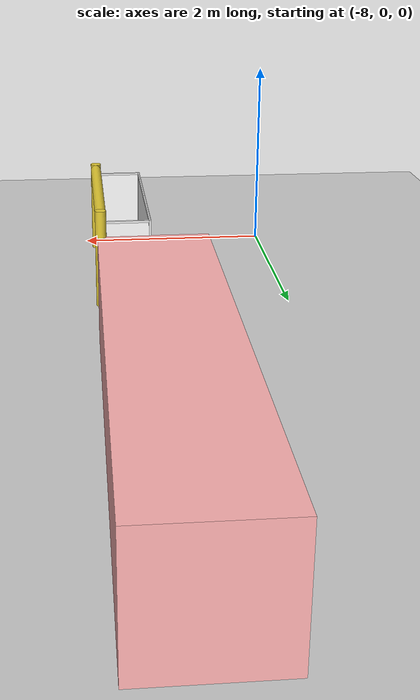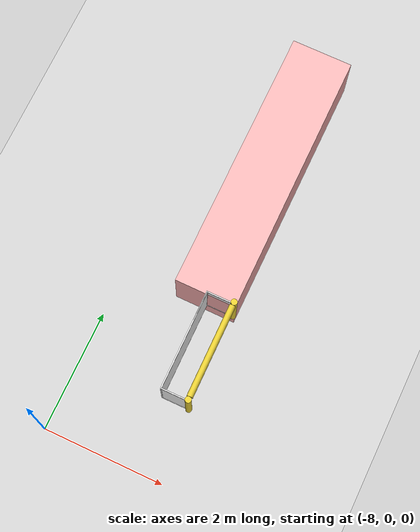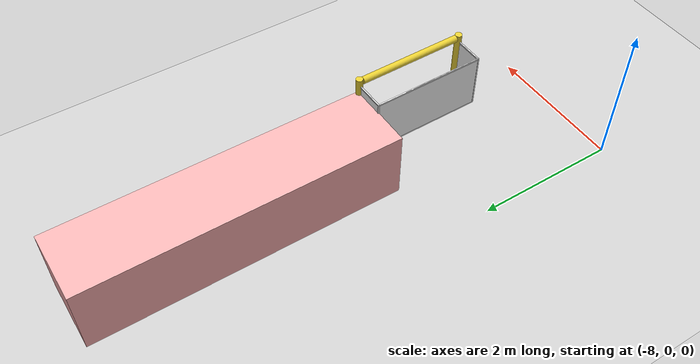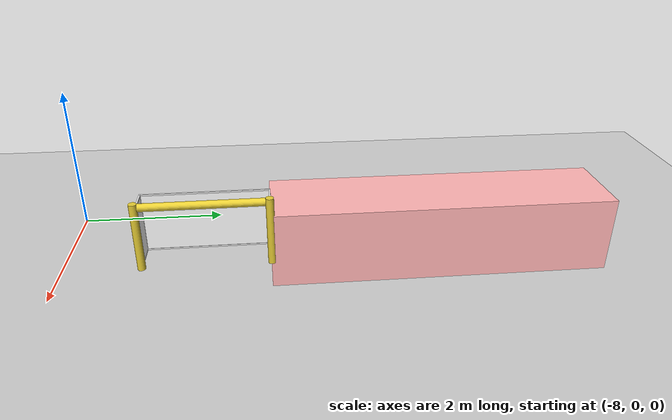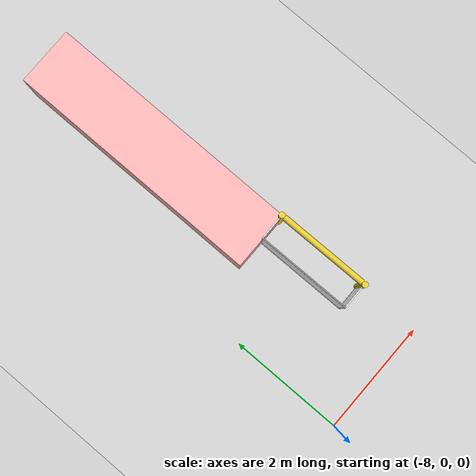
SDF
<sdf version="1.6">
 <world name="default">
  <model name="ground_plane">
   <static>1</static>
   <link name="link">
    <collision name="collision">
     <geometry><plane><normal>0 0 1</normal><size>100 100</size></plane></geometry>
     <surface><friction><ode><mu>100</mu><mu2>50</mu2></ode></friction></surface>
    </collision>
    <visual name="visual">
     <cast_shadows>0</cast_shadows>
     <geometry><plane><normal>0 0 1</normal><size>100 100</size></plane></geometry>
     <material>
      <script><uri>file://media/materials/scripts/gazebo.material</uri><name>Gazebo/Grey</name></script>
     </material>
    </visual>
   </link>
  </model>
  <model name="unit_box_0_clone_0_0_clone_0_0">
   <link name="link">
    <inertial>
     <mass>1</mass>
     <inertia>
      <ixx>0.166667</ixx>
      <ixy>0</ixy>
      <ixz>0</ixz>
      <iyy>0.166667</iyy>
      <iyz>0</iyz>
      <izz>0.166667</izz>
     </inertia>
    </inertial>
    <visual name="visual">
     <geometry><box><size>1 4.38308 1</size></box></geometry>
     <material>
      <script><name>Gazebo/Grey</name><uri>file://media/materials/scripts/gazebo.material</uri></script>
      <ambient>0.6 0.3 0.3 1</ambient>
      <diffuse>1 0.7 0.7 1</diffuse>
      <specular>0.31 0.01 0.01 1</specular>
      <emissive>0.7 0.7 0.7 1</emissive>
      <shader type="vertex"><normal_map>__default__</normal_map></shader>
     </material>
    </visual>
    <collision name="collision">
     <geometry><box><size>1 4.38308 1</size></box></geometry>
     <surface>
      <friction>
       <ode><mu>1</mu><mu2>1</mu2><fdir1>0 0 0</fdir1><slip1>0</slip1><slip2>0</slip2></ode>
       <torsional>
        <coefficient>1</coefficient>
        <patch_radius>0</patch_radius>
        <surface_radius>0</surface_radius>
        <use_patch_radius>1</use_patch_radius>
        <ode><slip>0</slip></ode>
       </torsional>
      </friction>
      <bounce><restitution_coefficient>0</restitution_coefficient><threshold>1e+06</threshold></bounce>
      <contact>
       <collide_without_contact>0</collide_without_contact>
       <collide_without_contact_bitmask>1</collide_without_contact_bitmask>
       <collide_bitmask>1</collide_bitmask>
       <ode>
        <soft_cfm>0</soft_cfm>
        <soft_erp>0.2</soft_erp>
        <kp>1e+13</kp>
        <kd>1</kd>
        <max_vel>0.01</max_vel>
        <min_depth>0</min_depth>
       </ode>
       <bullet>
        <split_impulse>1</split_impulse>
        <split_impulse_penetration_threshold>-0.01</split_impulse_penetration_threshold>
        <soft_cfm>0</soft_cfm>
        <soft_erp>0.2</soft_erp>
        <kp>1e+13</kp>
        <kd>1</kd>
       </bullet>
      </contact>
     </surface>
    </collision>
   </link>
   <static>1</static>
   <pose>-6.58164 4.95131 0.498874 -3.14102 -0 -3e-06</pose>
  </model>
  <model name="RoboCup_2014_SPL_Goal_clone_0">
   <link name="left_post">
    <pose>-0 0.8 0.45 0 -0 0</pose>
    <visual name="visual">
     <geometry><cylinder><radius>0.05</radius><length>0.9</length></cylinder></geometry>
     <material>
      <script><uri>file://media/materials/scripts/gazebo.material</uri><name>Gazebo/ZincYellow</name></script>
      <ambient>0.9725 0.9529 0.2078 1</ambient>
      <diffuse>0.9725 0.9529 0.2078 1</diffuse>
      <specular>0.9725 0.9529 0.2078 1</specular>
      <emissive>0 0 0 1</emissive>
     </material>
    </visual>
    <collision name="collision">
     <geometry><cylinder><radius>0.05</radius><length>0.9</length></cylinder></geometry>
     <surface>
      <friction>
       <ode><mu>1</mu><mu2>1</mu2><fdir1>0 0 0</fdir1><slip1>0</slip1><slip2>0</slip2></ode>
       <torsional>
        <coefficient>1</coefficient>
        <patch_radius>0</patch_radius>
        <surface_radius>0</surface_radius>
        <use_patch_radius>1</use_patch_radius>
        <ode><slip>0</slip></ode>
       </torsional>
      </friction>
      <bounce><restitution_coefficient>0</restitution_coefficient><threshold>1e+06</threshold></bounce>
      <contact>
       <collide_without_contact>0</collide_without_contact>
       <collide_without_contact_bitmask>1</collide_without_contact_bitmask>
       <collide_bitmask>1</collide_bitmask>
       <ode>
        <soft_cfm>0</soft_cfm>
        <soft_erp>0.2</soft_erp>
        <kp>1e+13</kp>
        <kd>1</kd>
        <max_vel>0.01</max_vel>
        <min_depth>0</min_depth>
       </ode>
       <bullet>
        <split_impulse>1</split_impulse>
        <split_impulse_penetration_threshold>-0.01</split_impulse_penetration_threshold>
        <soft_cfm>0</soft_cfm>
        <soft_erp>0.2</soft_erp>
        <kp>1e+13</kp>
        <kd>1</kd>
       </bullet>
      </contact>
     </surface>
    </collision>
   </link>
   <link name="center_net">
    <pose>0.44 -0 0.4 0 -0 0</pose>
    <inertial>
     <mass>1</mass>
     <inertia><ixx>1</ixx><ixy>0</ixy><ixz>0</ixz><iyy>1</iyy><iyz>0</iyz><izz>1</izz></inertia>
    </inertial>
    <visual name="visual">
     <geometry><box><size>0.01 1.6 0.8</size></box></geometry>
     <material>
      <script>
       <uri>model://robocup09_spl_field/materials/scripts/</uri>
       <uri>model://robocup09_spl_field/materials/textures/</uri>
       <name>RoboCup/Net</name>
      </script>
      <ambient>1 1 1 1</ambient>
      <diffuse>1 1 1 1</diffuse>
      <specular>0 0 0 1</specular>
      <emissive>1 1 0 1</emissive>
      <shader type="vertex"><normal_map>__default__</normal_map></shader>
     </material>
    </visual>
    <collision name="collision">
     <geometry><box><size>0.01 1.6 0.8</size></box></geometry>
     <surface>
      <friction>
       <ode><mu>1</mu><mu2>1</mu2><fdir1>0 0 0</fdir1><slip1>0</slip1><slip2>0</slip2></ode>
       <torsional>
        <coefficient>1</coefficient>
        <patch_radius>0</patch_radius>
        <surface_radius>0</surface_radius>
        <use_patch_radius>1</use_patch_radius>
        <ode><slip>0</slip></ode>
       </torsional>
      </friction>
      <bounce><restitution_coefficient>0</restitution_coefficient><threshold>1e+06</threshold></bounce>
      <contact>
       <collide_without_contact>0</collide_without_contact>
       <collide_without_contact_bitmask>1</collide_without_contact_bitmask>
       <collide_bitmask>1</collide_bitmask>
       <ode>
        <soft_cfm>0</soft_cfm>
        <soft_erp>0.2</soft_erp>
        <kp>1e+13</kp>
        <kd>1</kd>
        <max_vel>0.01</max_vel>
        <min_depth>0</min_depth>
       </ode>
       <bullet>
        <split_impulse>1</split_impulse>
        <split_impulse_penetration_threshold>-0.01</split_impulse_penetration_threshold>
        <soft_cfm>0</soft_cfm>
        <soft_erp>0.2</soft_erp>
        <kp>1e+13</kp>
        <kd>1</kd>
       </bullet>
      </contact>
     </surface>
    </collision>
   </link>
   <link name="center_support_horiz_lower">
    <pose>0.44 -0 0.01 3.14158 1.57079 3.14158</pose>
    <visual name="visual">
     <geometry><box><size>0.02 1.58 0.02</size></box></geometry>
     <material>
      <script><uri>file://media/materials/scripts/gazebo.material</uri><name>Gazebo/White</name></script>
      <ambient>1 1 1 1</ambient>
      <diffuse>1 1 1 1</diffuse>
      <specular>0 0 0 1</specular>
      <emissive>0 0 0 1</emissive>
     </material>
    </visual>
    <collision name="collision">
     <geometry><box><size>0.02 1.58 0.02</size></box></geometry>
     <surface>
      <friction>
       <ode><mu>1</mu><mu2>1</mu2><fdir1>0 0 0</fdir1><slip1>0</slip1><slip2>0</slip2></ode>
       <torsional>
        <coefficient>1</coefficient>
        <patch_radius>0</patch_radius>
        <surface_radius>0</surface_radius>
        <use_patch_radius>1</use_patch_radius>
        <ode><slip>0</slip></ode>
       </torsional>
      </friction>
      <bounce><restitution_coefficient>0</restitution_coefficient><threshold>1e+06</threshold></bounce>
      <contact>
       <collide_without_contact>0</collide_without_contact>
       <collide_without_contact_bitmask>1</collide_without_contact_bitmask>
       <collide_bitmask>1</collide_bitmask>
       <ode>
        <soft_cfm>0</soft_cfm>
        <soft_erp>0.2</soft_erp>
        <kp>1e+13</kp>
        <kd>1</kd>
        <max_vel>0.01</max_vel>
        <min_depth>0</min_depth>
       </ode>
       <bullet>
        <split_impulse>1</split_impulse>
        <split_impulse_penetration_threshold>-0.01</split_impulse_penetration_threshold>
        <soft_cfm>0</soft_cfm>
        <soft_erp>0.2</soft_erp>
        <kp>1e+13</kp>
        <kd>1</kd>
       </bullet>
      </contact>
     </surface>
    </collision>
   </link>
   <link name="center_support_horiz_upper">
    <pose>0.44 -0 0.79 3.14158 1.57079 3.14158</pose>
    <visual name="visual">
     <geometry><box><size>0.02 1.58 0.02</size></box></geometry>
     <material>
      <script><uri>file://media/materials/scripts/gazebo.material</uri><name>Gazebo/White</name></script>
      <ambient>1 1 1 1</ambient>
      <diffuse>1 1 1 1</diffuse>
      <specular>0 0 0 1</specular>
      <emissive>0 0 0 1</emissive>
     </material>
    </visual>
    <collision name="collision">
     <geometry><box><size>0.02 1.58 0.02</size></box></geometry>
     <surface>
      <friction>
       <ode><mu>1</mu><mu2>1</mu2><fdir1>0 0 0</fdir1><slip1>0</slip1><slip2>0</slip2></ode>
       <torsional>
        <coefficient>1</coefficient>
        <patch_radius>0</patch_radius>
        <surface_radius>0</surface_radius>
        <use_patch_radius>1</use_patch_radius>
        <ode><slip>0</slip></ode>
       </torsional>
      </friction>
      <bounce><restitution_coefficient>0</restitution_coefficient><threshold>1e+06</threshold></bounce>
      <contact>
       <collide_without_contact>0</collide_without_contact>
       <collide_without_contact_bitmask>1</collide_without_contact_bitmask>
       <collide_bitmask>1</collide_bitmask>
       <ode>
        <soft_cfm>0</soft_cfm>
        <soft_erp>0.2</soft_erp>
        <kp>1e+13</kp>
        <kd>1</kd>
        <max_vel>0.01</max_vel>
        <min_depth>0</min_depth>
       </ode>
       <bullet>
        <split_impulse>1</split_impulse>
        <split_impulse_penetration_threshold>-0.01</split_impulse_penetration_threshold>
        <soft_cfm>0</soft_cfm>
        <soft_erp>0.2</soft_erp>
        <kp>1e+13</kp>
        <kd>1</kd>
       </bullet>
      </contact>
     </surface>
    </collision>
   </link>
   <link name="crossbar">
    <pose>0 0 0.85 1.57011 1.57 0.000106</pose>
    <visual name="visual">
     <geometry><cylinder><radius>0.05</radius><length>1.5</length></cylinder></geometry>
     <material>
      <script><uri>file://media/materials/scripts/gazebo.material</uri><name>Gazebo/ZincYellow</name></script>
      <ambient>0.9725 0.9529 0.2078 1</ambient>
      <diffuse>0.9725 0.9529 0.2078 1</diffuse>
      <specular>0.9725 0.9529 0.2078 1</specular>
      <emissive>0 0 0 1</emissive>
     </material>
    </visual>
    <collision name="collision">
     <geometry><cylinder><radius>0.05</radius><length>1.5</length></cylinder></geometry>
     <surface>
      <friction>
       <ode><mu>1</mu><mu2>1</mu2><fdir1>0 0 0</fdir1><slip1>0</slip1><slip2>0</slip2></ode>
       <torsional>
        <coefficient>1</coefficient>
        <patch_radius>0</patch_radius>
        <surface_radius>0</surface_radius>
        <use_patch_radius>1</use_patch_radius>
        <ode><slip>0</slip></ode>
       </torsional>
      </friction>
      <bounce><restitution_coefficient>0</restitution_coefficient><threshold>1e+06</threshold></bounce>
      <contact>
       <collide_without_contact>0</collide_without_contact>
       <collide_without_contact_bitmask>1</collide_without_contact_bitmask>
       <collide_bitmask>1</collide_bitmask>
       <ode>
        <soft_cfm>0</soft_cfm>
        <soft_erp>0.2</soft_erp>
        <kp>1e+13</kp>
        <kd>1</kd>
        <max_vel>0.01</max_vel>
        <min_depth>0</min_depth>
       </ode>
       <bullet>
        <split_impulse>1</split_impulse>
        <split_impulse_penetration_threshold>-0.01</split_impulse_penetration_threshold>
        <soft_cfm>0</soft_cfm>
        <soft_erp>0.2</soft_erp>
        <kp>1e+13</kp>
        <kd>1</kd>
       </bullet>
      </contact>
     </surface>
    </collision>
   </link>
   <link name="left_net">
    <pose>0.24 0.8 0.4 0 -0 0</pose>
    <visual name="visual">
     <geometry><box><size>0.38 0.01 0.76</size></box></geometry>
     <material>
      <script>
       <uri>model://robocup09_spl_field/materials/scripts/</uri>
       <uri>model://robocup09_spl_field/materials/textures/</uri>
       <name>RoboCup/Net</name>
      </script>
      <ambient>1 1 1 1</ambient>
      <diffuse>1 1 1 1</diffuse>
      <specular>0 0 0 1</specular>
      <emissive>0 0 0 1</emissive>
     </material>
    </visual>
    <collision name="collision">
     <geometry><box><size>0.38 0.01 0.76</size></box></geometry>
     <surface>
      <friction>
       <ode><mu>1</mu><mu2>1</mu2><fdir1>0 0 0</fdir1><slip1>0</slip1><slip2>0</slip2></ode>
       <torsional>
        <coefficient>1</coefficient>
        <patch_radius>0</patch_radius>
        <surface_radius>0</surface_radius>
        <use_patch_radius>1</use_patch_radius>
        <ode><slip>0</slip></ode>
       </torsional>
      </friction>
      <bounce><restitution_coefficient>0</restitution_coefficient><threshold>1e+06</threshold></bounce>
      <contact>
       <collide_without_contact>0</collide_without_contact>
       <collide_without_contact_bitmask>1</collide_without_contact_bitmask>
       <collide_bitmask>1</collide_bitmask>
       <ode>
        <soft_cfm>0</soft_cfm>
        <soft_erp>0.2</soft_erp>
        <kp>1e+13</kp>
        <kd>1</kd>
        <max_vel>0.01</max_vel>
        <min_depth>0</min_depth>
       </ode>
       <bullet>
        <split_impulse>1</split_impulse>
        <split_impulse_penetration_threshold>-0.01</split_impulse_penetration_threshold>
        <soft_cfm>0</soft_cfm>
        <soft_erp>0.2</soft_erp>
        <kp>1e+13</kp>
        <kd>1</kd>
       </bullet>
      </contact>
     </surface>
    </collision>
   </link>
   <link name="left_support_horiz_lower">
    <pose>0.24 0.8 0.01 0 -0 0</pose>
    <visual name="visual">
     <geometry><box><size>0.38 0.02 0.02</size></box></geometry>
     <material>
      <script><uri>file://media/materials/scripts/gazebo.material</uri><name>Gazebo/White</name></script>
      <ambient>1 1 1 1</ambient>
      <diffuse>1 1 1 1</diffuse>
      <specular>0 0 0 1</specular>
      <emissive>0 0 0 1</emissive>
     </material>
    </visual>
    <collision name="collision">
     <geometry><box><size>0.38 0.02 0.02</size></box></geometry>
     <surface>
      <friction>
       <ode><mu>1</mu><mu2>1</mu2><fdir1>0 0 0</fdir1><slip1>0</slip1><slip2>0</slip2></ode>
       <torsional>
        <coefficient>1</coefficient>
        <patch_radius>0</patch_radius>
        <surface_radius>0</surface_radius>
        <use_patch_radius>1</use_patch_radius>
        <ode><slip>0</slip></ode>
       </torsional>
      </friction>
      <bounce><restitution_coefficient>0</restitution_coefficient><threshold>1e+06</threshold></bounce>
      <contact>
       <collide_without_contact>0</collide_without_contact>
       <collide_without_contact_bitmask>1</collide_without_contact_bitmask>
       <collide_bitmask>1</collide_bitmask>
       <ode>
        <soft_cfm>0</soft_cfm>
        <soft_erp>0.2</soft_erp>
        <kp>1e+13</kp>
        <kd>1</kd>
        <max_vel>0.01</max_vel>
        <min_depth>0</min_depth>
       </ode>
       <bullet>
        <split_impulse>1</split_impulse>
        <split_impulse_penetration_threshold>-0.01</split_impulse_penetration_threshold>
        <soft_cfm>0</soft_cfm>
        <soft_erp>0.2</soft_erp>
        <kp>1e+13</kp>
        <kd>1</kd>
       </bullet>
      </contact>
     </surface>
    </collision>
   </link>
   <link name="left_support_horiz_upper">
    <pose>0.24 0.8 0.79 0 -0 0</pose>
    <visual name="visual">
     <geometry><box><size>0.38 0.02 0.02</size></box></geometry>
     <material>
      <script><uri>file://media/materials/scripts/gazebo.material</uri><name>Gazebo/White</name></script>
      <ambient>1 1 1 1</ambient>
      <diffuse>1 1 1 1</diffuse>
      <specular>0 0 0 1</specular>
      <emissive>0 0 0 1</emissive>
     </material>
    </visual>
    <collision name="collision">
     <geometry><box><size>0.38 0.02 0.02</size></box></geometry>
     <surface>
      <friction>
       <ode><mu>1</mu><mu2>1</mu2><fdir1>0 0 0</fdir1><slip1>0</slip1><slip2>0</slip2></ode>
       <torsional>
        <coefficient>1</coefficient>
        <patch_radius>0</patch_radius>
        <surface_radius>0</surface_radius>
        <use_patch_radius>1</use_patch_radius>
        <ode><slip>0</slip></ode>
       </torsional>
      </friction>
      <bounce><restitution_coefficient>0</restitution_coefficient><threshold>1e+06</threshold></bounce>
      <contact>
       <collide_without_contact>0</collide_without_contact>
       <collide_without_contact_bitmask>1</collide_without_contact_bitmask>
       <collide_bitmask>1</collide_bitmask>
       <ode>
        <soft_cfm>0</soft_cfm>
        <soft_erp>0.2</soft_erp>
        <kp>1e+13</kp>
        <kd>1</kd>
        <max_vel>0.01</max_vel>
        <min_depth>0</min_depth>
       </ode>
       <bullet>
        <split_impulse>1</split_impulse>
        <split_impulse_penetration_threshold>-0.01</split_impulse_penetration_threshold>
        <soft_cfm>0</soft_cfm>
        <soft_erp>0.2</soft_erp>
        <kp>1e+13</kp>
        <kd>1</kd>
       </bullet>
      </contact>
     </surface>
    </collision>
   </link>
   <link name="left_support_vertical">
    <pose>0.44 0.8 0.4 3.14158 1.57079 3.14158</pose>
    <visual name="visual">
     <geometry><box><size>0.8 0.02 0.02</size></box></geometry>
     <material>
      <script><uri>file://media/materials/scripts/gazebo.material</uri><name>Gazebo/White</name></script>
      <ambient>1 1 1 1</ambient>
      <diffuse>1 1 1 1</diffuse>
      <specular>0 0 0 1</specular>
      <emissive>0 0 0 1</emissive>
     </material>
    </visual>
    <collision name="collision">
     <geometry><box><size>0.8 0.02 0.02</size></box></geometry>
     <surface>
      <friction>
       <ode><mu>1</mu><mu2>1</mu2><fdir1>0 0 0</fdir1><slip1>0</slip1><slip2>0</slip2></ode>
       <torsional>
        <coefficient>1</coefficient>
        <patch_radius>0</patch_radius>
        <surface_radius>0</surface_radius>
        <use_patch_radius>1</use_patch_radius>
        <ode><slip>0</slip></ode>
       </torsional>
      </friction>
      <bounce><restitution_coefficient>0</restitution_coefficient><threshold>1e+06</threshold></bounce>
      <contact>
       <collide_without_contact>0</collide_without_contact>
       <collide_without_contact_bitmask>1</collide_without_contact_bitmask>
       <collide_bitmask>1</collide_bitmask>
       <ode>
        <soft_cfm>0</soft_cfm>
        <soft_erp>0.2</soft_erp>
        <kp>1e+13</kp>
        <kd>1</kd>
        <max_vel>0.01</max_vel>
        <min_depth>0</min_depth>
       </ode>
       <bullet>
        <split_impulse>1</split_impulse>
        <split_impulse_penetration_threshold>-0.01</split_impulse_penetration_threshold>
        <soft_cfm>0</soft_cfm>
        <soft_erp>0.2</soft_erp>
        <kp>1e+13</kp>
        <kd>1</kd>
       </bullet>
      </contact>
     </surface>
    </collision>
   </link>
   <link name="right_net">
    <pose>0.24 -0.8 0.4 0 -0 0</pose>
    <visual name="visual">
     <geometry><box><size>0.38 0.01 0.76</size></box></geometry>
     <material>
      <script>
       <uri>model://robocup09_spl_field/materials/scripts/</uri>
       <uri>model://robocup09_spl_field/materials/textures/</uri>
       <name>RoboCup/Net</name>
      </script>
      <ambient>1 1 1 1</ambient>
      <diffuse>1 1 1 1</diffuse>
      <specular>0 0 0 1</specular>
      <emissive>0 0 0 1</emissive>
     </material>
    </visual>
    <collision name="collision">
     <geometry><box><size>0.38 0.01 0.76</size></box></geometry>
     <surface>
      <friction>
       <ode><mu>1</mu><mu2>1</mu2><fdir1>0 0 0</fdir1><slip1>0</slip1><slip2>0</slip2></ode>
       <torsional>
        <coefficient>1</coefficient>
        <patch_radius>0</patch_radius>
        <surface_radius>0</surface_radius>
        <use_patch_radius>1</use_patch_radius>
        <ode><slip>0</slip></ode>
       </torsional>
      </friction>
      <bounce><restitution_coefficient>0</restitution_coefficient><threshold>1e+06</threshold></bounce>
      <contact>
       <collide_without_contact>0</collide_without_contact>
       <collide_without_contact_bitmask>1</collide_without_contact_bitmask>
       <collide_bitmask>1</collide_bitmask>
       <ode>
        <soft_cfm>0</soft_cfm>
        <soft_erp>0.2</soft_erp>
        <kp>1e+13</kp>
        <kd>1</kd>
        <max_vel>0.01</max_vel>
        <min_depth>0</min_depth>
       </ode>
       <bullet>
        <split_impulse>1</split_impulse>
        <split_impulse_penetration_threshold>-0.01</split_impulse_penetration_threshold>
        <soft_cfm>0</soft_cfm>
        <soft_erp>0.2</soft_erp>
        <kp>1e+13</kp>
        <kd>1</kd>
       </bullet>
      </contact>
     </surface>
    </collision>
   </link>
   <link name="right_post">
    <pose>0 -0.8 0.45 0 -0 0</pose>
    <visual name="visual">
     <geometry><cylinder><radius>0.05</radius><length>0.9</length></cylinder></geometry>
     <material>
      <script><uri>file://media/materials/scripts/gazebo.material</uri><name>Gazebo/ZincYellow</name></script>
      <ambient>0.9725 0.9529 0.2078 1</ambient>
      <diffuse>0.9725 0.9529 0.2078 1</diffuse>
      <specular>0.9725 0.9529 0.2078 1</specular>
      <emissive>0 0 0 1</emissive>
     </material>
    </visual>
    <collision name="collision">
     <geometry><cylinder><radius>0.05</radius><length>0.9</length></cylinder></geometry>
     <surface>
      <friction>
       <ode><mu>1</mu><mu2>1</mu2><fdir1>0 0 0</fdir1><slip1>0</slip1><slip2>0</slip2></ode>
       <torsional>
        <coefficient>1</coefficient>
        <patch_radius>0</patch_radius>
        <surface_radius>0</surface_radius>
        <use_patch_radius>1</use_patch_radius>
        <ode><slip>0</slip></ode>
       </torsional>
      </friction>
      <bounce><restitution_coefficient>0</restitution_coefficient><threshold>1e+06</threshold></bounce>
      <contact>
       <collide_without_contact>0</collide_without_contact>
       <collide_without_contact_bitmask>1</collide_without_contact_bitmask>
       <collide_bitmask>1</collide_bitmask>
       <ode>
        <soft_cfm>0</soft_cfm>
        <soft_erp>0.2</soft_erp>
        <kp>1e+13</kp>
        <kd>1</kd>
        <max_vel>0.01</max_vel>
        <min_depth>0</min_depth>
       </ode>
       <bullet>
        <split_impulse>1</split_impulse>
        <split_impulse_penetration_threshold>-0.01</split_impulse_penetration_threshold>
        <soft_cfm>0</soft_cfm>
        <soft_erp>0.2</soft_erp>
        <kp>1e+13</kp>
        <kd>1</kd>
       </bullet>
      </contact>
     </surface>
    </collision>
   </link>
   <link name="right_support_horiz_lower">
    <pose>0.24 -0.8 0.01 0 -0 0</pose>
    <visual name="visual">
     <geometry><box><size>0.38 0.02 0.02</size></box></geometry>
     <material>
      <script><uri>file://media/materials/scripts/gazebo.material</uri><name>Gazebo/White</name></script>
      <ambient>1 1 1 1</ambient>
      <diffuse>1 1 1 1</diffuse>
      <specular>0 0 0 1</specular>
      <emissive>0 0 0 1</emissive>
     </material>
    </visual>
    <collision name="collision">
     <geometry><box><size>0.38 0.02 0.02</size></box></geometry>
     <surface>
      <friction>
       <ode><mu>1</mu><mu2>1</mu2><fdir1>0 0 0</fdir1><slip1>0</slip1><slip2>0</slip2></ode>
       <torsional>
        <coefficient>1</coefficient>
        <patch_radius>0</patch_radius>
        <surface_radius>0</surface_radius>
        <use_patch_radius>1</use_patch_radius>
        <ode><slip>0</slip></ode>
       </torsional>
      </friction>
      <bounce><restitution_coefficient>0</restitution_coefficient><threshold>1e+06</threshold></bounce>
      <contact>
       <collide_without_contact>0</collide_without_contact>
       <collide_without_contact_bitmask>1</collide_without_contact_bitmask>
       <collide_bitmask>1</collide_bitmask>
       <ode>
        <soft_cfm>0</soft_cfm>
        <soft_erp>0.2</soft_erp>
        <kp>1e+13</kp>
        <kd>1</kd>
        <max_vel>0.01</max_vel>
        <min_depth>0</min_depth>
       </ode>
       <bullet>
        <split_impulse>1</split_impulse>
        <split_impulse_penetration_threshold>-0.01</split_impulse_penetration_threshold>
        <soft_cfm>0</soft_cfm>
        <soft_erp>0.2</soft_erp>
        <kp>1e+13</kp>
        <kd>1</kd>
       </bullet>
      </contact>
     </surface>
    </collision>
   </link>
   <link name="right_support_horiz_upper">
    <pose>0.24 -0.8 0.79 0 -0 0</pose>
    <visual name="visual">
     <geometry><box><size>0.38 0.02 0.02</size></box></geometry>
     <material>
      <script><uri>file://media/materials/scripts/gazebo.material</uri><name>Gazebo/White</name></script>
      <ambient>1 1 1 1</ambient>
      <diffuse>1 1 1 1</diffuse>
      <specular>0 0 0 1</specular>
      <emissive>0 0 0 1</emissive>
     </material>
    </visual>
    <collision name="collision">
     <geometry><box><size>0.38 0.02 0.02</size></box></geometry>
     <surface>
      <friction>
       <ode><mu>1</mu><mu2>1</mu2><fdir1>0 0 0</fdir1><slip1>0</slip1><slip2>0</slip2></ode>
       <torsional>
        <coefficient>1</coefficient>
        <patch_radius>0</patch_radius>
        <surface_radius>0</surface_radius>
        <use_patch_radius>1</use_patch_radius>
        <ode><slip>0</slip></ode>
       </torsional>
      </friction>
      <bounce><restitution_coefficient>0</restitution_coefficient><threshold>1e+06</threshold></bounce>
      <contact>
       <collide_without_contact>0</collide_without_contact>
       <collide_without_contact_bitmask>1</collide_without_contact_bitmask>
       <collide_bitmask>1</collide_bitmask>
       <ode>
        <soft_cfm>0</soft_cfm>
        <soft_erp>0.2</soft_erp>
        <kp>1e+13</kp>
        <kd>1</kd>
        <max_vel>0.01</max_vel>
        <min_depth>0</min_depth>
       </ode>
       <bullet>
        <split_impulse>1</split_impulse>
        <split_impulse_penetration_threshold>-0.01</split_impulse_penetration_threshold>
        <soft_cfm>0</soft_cfm>
        <soft_erp>0.2</soft_erp>
        <kp>1e+13</kp>
        <kd>1</kd>
       </bullet>
      </contact>
     </surface>
    </collision>
   </link>
   <link name="right_support_vertical">
    <pose>0.44 -0.8 0.4 3.14158 1.57079 3.14158</pose>
    <visual name="visual">
     <geometry><box><size>0.8 0.02 0.02</size></box></geometry>
     <material>
      <script><uri>file://media/materials/scripts/gazebo.material</uri><name>Gazebo/White</name></script>
      <ambient>1 1 1 1</ambient>
      <diffuse>1 1 1 1</diffuse>
      <specular>0 0 0 1</specular>
      <emissive>0 0 0 1</emissive>
     </material>
    </visual>
    <collision name="collision">
     <geometry><box><size>0.8 0.02 0.02</size></box></geometry>
     <surface>
      <friction>
       <ode><mu>1</mu><mu2>1</mu2><fdir1>0 0 0</fdir1><slip1>0</slip1><slip2>0</slip2></ode>
       <torsional>
        <coefficient>1</coefficient>
        <patch_radius>0</patch_radius>
        <surface_radius>0</surface_radius>
        <use_patch_radius>1</use_patch_radius>
        <ode><slip>0</slip></ode>
       </torsional>
      </friction>
      <bounce><restitution_coefficient>0</restitution_coefficient><threshold>1e+06</threshold></bounce>
      <contact>
       <collide_without_contact>0</collide_without_contact>
       <collide_without_contact_bitmask>1</collide_without_contact_bitmask>
       <collide_bitmask>1</collide_bitmask>
       <ode>
        <soft_cfm>0</soft_cfm>
        <soft_erp>0.2</soft_erp>
        <kp>1e+13</kp>
        <kd>1</kd>
        <max_vel>0.01</max_vel>
        <min_depth>0</min_depth>
       </ode>
       <bullet>
        <split_impulse>1</split_impulse>
        <split_impulse_penetration_threshold>-0.01</split_impulse_penetration_threshold>
        <soft_cfm>0</soft_cfm>
        <soft_erp>0.2</soft_erp>
        <kp>1e+13</kp>
        <kd>1</kd>
       </bullet>
      </contact>
     </surface>
    </collision>
   </link>
   <static>1</static>
   <pose>-6.10818 1.96795 0.34145 0 0 -3.13532</pose>
  </model>
 </world>
</sdf>
